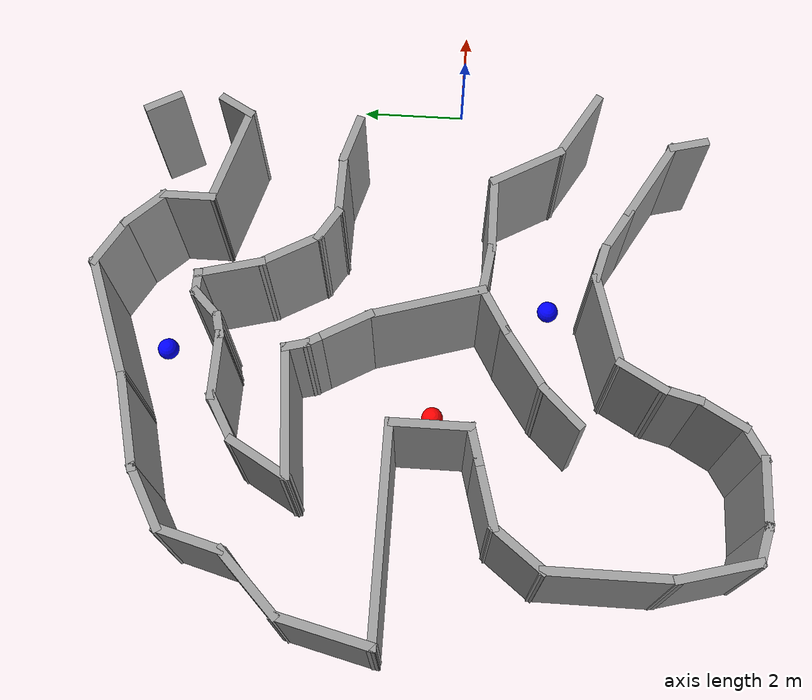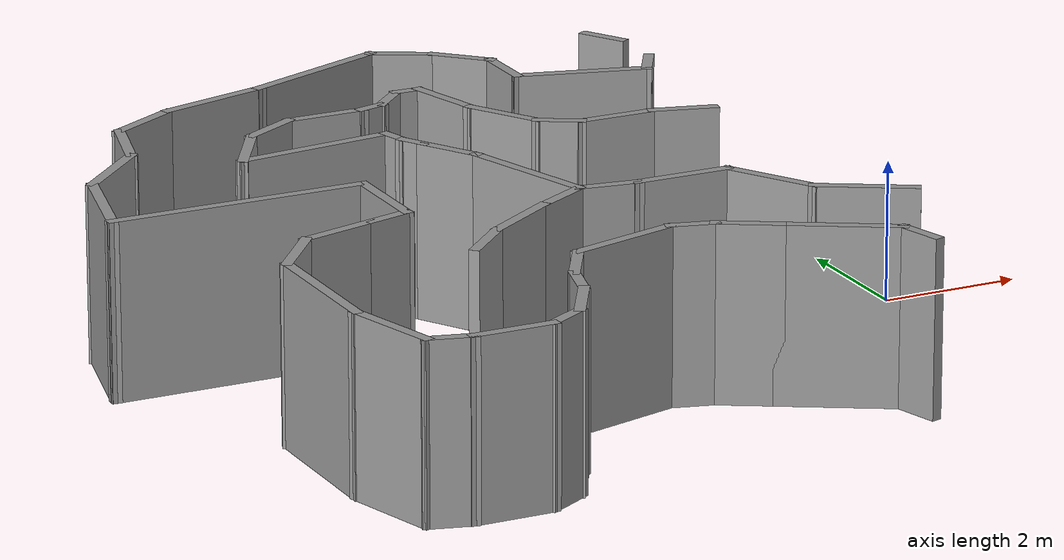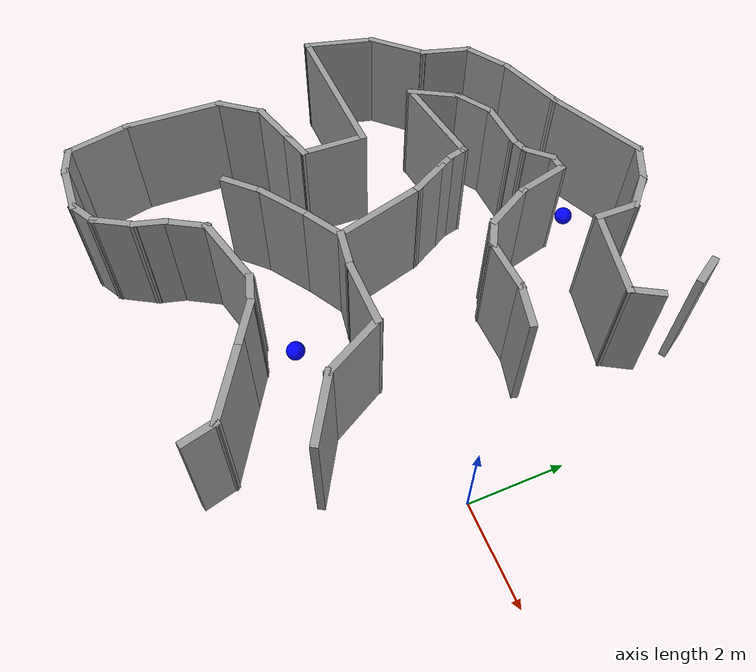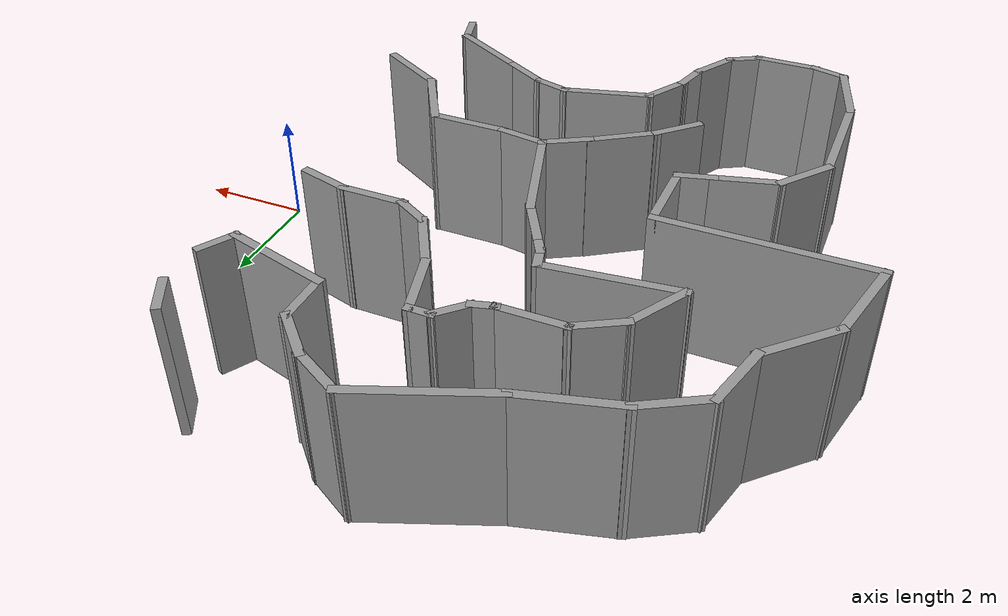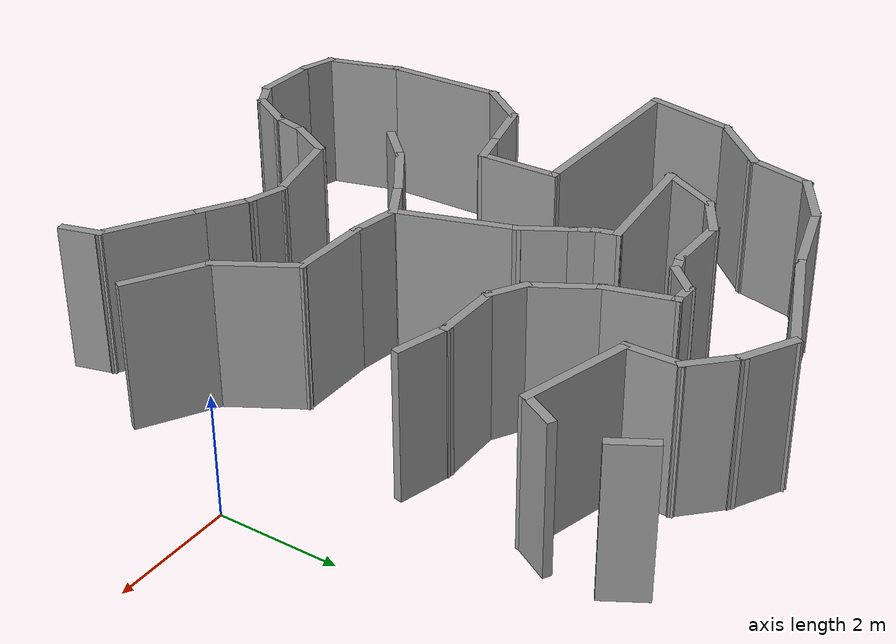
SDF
<sdf version="1.7">
 <model name="patrol_environment">
  <static>true</static>
  <pose>-2.57827 0.945924 0 0 -0 0</pose>
  <link name="Wall_1">
   <collision name="Wall_1_Collision">
    <geometry><box><size>2.25 0.15 2.5</size></box></geometry>
    <pose>0 0 1.25 0 -0 0</pose>
   </collision>
   <visual name="Wall_1_Visual">
    <pose>0 0 1.25 0 -0 0</pose>
    <geometry><box><size>2.25 0.15 2.5</size></box></geometry>
    <material>
     <script><uri>file://media/materials/scripts/gazebo.material</uri><name>Gazebo/Grey</name></script>
     <ambient>1 1 1 1</ambient>
    </material>
    <meta><layer>0</layer></meta>
   </visual>
   <pose>-7.15359 -3.67328 0 0 -0 -1.5708</pose>
  </link>
  <link name="Wall_10">
   <collision name="Wall_10_Collision">
    <geometry><box><size>0.75 0.15 2.5</size></box></geometry>
    <pose>0 0 1.25 0 -0 0</pose>
   </collision>
   <visual name="Wall_10_Visual">
    <pose>0 0 1.25 0 -0 0</pose>
    <geometry><box><size>0.75 0.15 2.5</size></box></geometry>
    <material>
     <script><uri>file://media/materials/scripts/gazebo.material</uri><name>Gazebo/Grey</name></script>
     <ambient>1 1 1 1</ambient>
    </material>
    <meta><layer>0</layer></meta>
   </visual>
   <pose>-1.76447 -3.49431 0 0 -0 -0.261799</pose>
  </link>
  <link name="Wall_108">
   <collision name="Wall_108_Collision">
    <geometry><box><size>1.5 0.15 2.5</size></box></geometry>
    <pose>0 0 1.25 0 -0 0</pose>
   </collision>
   <visual name="Wall_108_Visual">
    <pose>0 0 1.25 0 -0 0</pose>
    <geometry><box><size>1.5 0.15 2.5</size></box></geometry>
    <material>
     <script><uri>file://media/materials/scripts/gazebo.material</uri><name>Gazebo/Grey</name></script>
     <ambient>1 1 1 1</ambient>
    </material>
    <meta><layer>0</layer></meta>
   </visual>
   <pose>1.01327 -3.09083 0 0 -0 2.61799</pose>
  </link>
  <link name="Wall_109">
   <collision name="Wall_109_Collision">
    <geometry><box><size>1.5 0.15 2.5</size></box></geometry>
    <pose>0 0 1.25 0 -0 0</pose>
   </collision>
   <visual name="Wall_109_Visual">
    <pose>0 0 1.25 0 -0 0</pose>
    <geometry><box><size>1.5 0.15 2.5</size></box></geometry>
    <material>
     <script><uri>file://media/materials/scripts/gazebo.material</uri><name>Gazebo/Grey</name></script>
     <ambient>1 1 1 1</ambient>
    </material>
    <meta><layer>0</layer></meta>
   </visual>
   <pose>0.091205 -2.16876 0 0 -0 2.0944</pose>
  </link>
  <link name="Wall_11">
   <collision name="Wall_11_Collision">
    <geometry><box><size>1 0.15 2.5</size></box></geometry>
    <pose>0 0 1.25 0 -0 0</pose>
   </collision>
   <visual name="Wall_11_Visual">
    <pose>0 0 1.25 0 -0 0</pose>
    <geometry><box><size>1 0.15 2.5</size></box></geometry>
    <material>
     <script><uri>file://media/materials/scripts/gazebo.material</uri><name>Gazebo/Grey</name></script>
     <ambient>1 1 1 1</ambient>
    </material>
    <meta><layer>0</layer></meta>
   </visual>
   <pose>-1.10663 -3.78446 0 0 -0 -0.523599</pose>
  </link>
  <link name="Wall_110">
   <collision name="Wall_110_Collision">
    <geometry><box><size>1.5 0.15 2.5</size></box></geometry>
    <pose>0 0 1.25 0 -0 0</pose>
   </collision>
   <visual name="Wall_110_Visual">
    <pose>0 0 1.25 0 -0 0</pose>
    <geometry><box><size>1.5 0.15 2.5</size></box></geometry>
    <material>
     <script><uri>file://media/materials/scripts/gazebo.material</uri><name>Gazebo/Grey</name></script>
     <ambient>1 1 1 1</ambient>
    </material>
    <meta><layer>0</layer></meta>
   </visual>
   <pose>-0.921295 -1.58419 0 0 -0 3.14159</pose>
  </link>
  <link name="Wall_111">
   <collision name="Wall_111_Collision">
    <geometry><box><size>0.96902 0.15 2.5</size></box></geometry>
    <pose>0 0 1.25 0 -0 0</pose>
   </collision>
   <visual name="Wall_111_Visual">
    <pose>0 0 1.25 0 -0 0</pose>
    <geometry><box><size>0.96902 0.15 2.5</size></box></geometry>
    <material>
     <script><uri>file://media/materials/scripts/gazebo.material</uri><name>Gazebo/Grey</name></script>
     <ambient>1 1 1 1</ambient>
    </material>
    <meta><layer>0</layer></meta>
   </visual>
   <pose>-2.00146 -1.52468 0 0 -0 2.99575</pose>
  </link>
  <link name="Wall_112">
   <collision name="Wall_112_Collision">
    <geometry><box><size>1 0.15 2.5</size></box></geometry>
    <pose>0 0 1.25 0 -0 0</pose>
   </collision>
   <visual name="Wall_112_Visual">
    <pose>0 0 1.25 0 -0 0</pose>
    <geometry><box><size>1 0.15 2.5</size></box></geometry>
    <material>
     <script><uri>file://media/materials/scripts/gazebo.material</uri><name>Gazebo/Grey</name></script>
     <ambient>1 1 1 1</ambient>
    </material>
    <meta><layer>0</layer></meta>
   </visual>
   <pose>-2.76146 -1.67767 0 0 -0 -2.61799</pose>
  </link>
  <link name="Wall_113">
   <collision name="Wall_113_Collision">
    <geometry><box><size>1.34677 0.15 2.5</size></box></geometry>
    <pose>0 0 1.25 0 -0 0</pose>
   </collision>
   <visual name="Wall_113_Visual">
    <pose>0 0 1.25 0 -0 0</pose>
    <geometry><box><size>1.34677 0.15 2.5</size></box></geometry>
    <material>
     <script><uri>file://media/materials/scripts/gazebo.material</uri><name>Gazebo/Grey</name></script>
     <ambient>1 1 1 1</ambient>
    </material>
    <meta><layer>0</layer></meta>
   </visual>
   <pose>-3.63889 -2.22468 0 0 -0 -2.54838</pose>
  </link>
  <link name="Wall_114">
   <collision name="Wall_114_Collision">
    <geometry><box><size>1 0.15 2.5</size></box></geometry>
    <pose>0 0 1.25 0 -0 0</pose>
   </collision>
   <visual name="Wall_114_Visual">
    <pose>0 0 1.25 0 -0 0</pose>
    <geometry><box><size>1 0.15 2.5</size></box></geometry>
    <material>
     <script><uri>file://media/materials/scripts/gazebo.material</uri><name>Gazebo/Grey</name></script>
     <ambient>1 1 1 1</ambient>
    </material>
    <meta><layer>0</layer></meta>
   </visual>
   <pose>-4.43557 -2.85971 0 0 -0 -2.35619</pose>
  </link>
  <link name="Wall_116">
   <collision name="Wall_116_Collision">
    <geometry><box><size>2.1465 0.15 2.5</size></box></geometry>
    <pose>0 0 1.25 0 -0 0</pose>
   </collision>
   <visual name="Wall_116_Visual">
    <pose>0 0 1.25 0 -0 0</pose>
    <geometry><box><size>2.1465 0.15 2.5</size></box></geometry>
    <material>
     <script><uri>file://media/materials/scripts/gazebo.material</uri><name>Gazebo/Grey</name></script>
     <ambient>1 1 1 1</ambient>
    </material>
    <meta><layer>0</layer></meta>
   </visual>
   <pose>-2.69822 -0.510457 0 0 -0 1.86723</pose>
  </link>
  <link name="Wall_117">
   <collision name="Wall_117_Collision">
    <geometry><box><size>1 0.15 2.5</size></box></geometry>
    <pose>0 0 1.25 0 -0 0</pose>
   </collision>
   <visual name="Wall_117_Visual">
    <pose>0 0 1.25 0 -0 0</pose>
    <geometry><box><size>1 0.15 2.5</size></box></geometry>
    <material>
     <script><uri>file://media/materials/scripts/gazebo.material</uri><name>Gazebo/Grey</name></script>
     <ambient>1 1 1 1</ambient>
    </material>
    <meta><layer>0</layer></meta>
   </visual>
   <pose>-3.20232 0.812314 0 0 -0 2.0944</pose>
  </link>
  <link name="Wall_118">
   <collision name="Wall_118_Collision">
    <geometry><box><size>0.5 0.15 2.5</size></box></geometry>
    <pose>0 0 1.25 0 -0 0</pose>
   </collision>
   <visual name="Wall_118_Visual">
    <pose>0 0 1.25 0 -0 0</pose>
    <geometry><box><size>0.5 0.15 2.5</size></box></geometry>
    <material>
     <script><uri>file://media/materials/scripts/gazebo.material</uri><name>Gazebo/Grey</name></script>
     <ambient>1 1 1 1</ambient>
    </material>
    <meta><layer>0</layer></meta>
   </visual>
   <pose>-3.50231 1.33193 0 0 -0 2.0944</pose>
  </link>
  <link name="Wall_119">
   <collision name="Wall_119_Collision">
    <geometry><box><size>0.5 0.15 2.5</size></box></geometry>
    <pose>0 0 1.25 0 -0 0</pose>
   </collision>
   <visual name="Wall_119_Visual">
    <pose>0 0 1.25 0 -0 0</pose>
    <geometry><box><size>0.5 0.15 2.5</size></box></geometry>
    <material>
     <script><uri>file://media/materials/scripts/gazebo.material</uri><name>Gazebo/Grey</name></script>
     <ambient>1 1 1 1</ambient>
    </material>
    <meta><layer>0</layer></meta>
   </visual>
   <pose>-3.63511 1.65252 0 0 -0 1.8326</pose>
  </link>
  <link name="Wall_12">
   <collision name="Wall_12_Collision">
    <geometry><box><size>1.75 0.15 2.5</size></box></geometry>
    <pose>0 0 1.25 0 -0 0</pose>
   </collision>
   <visual name="Wall_12_Visual">
    <pose>0 0 1.25 0 -0 0</pose>
    <geometry><box><size>1.75 0.15 2.5</size></box></geometry>
    <material>
     <script><uri>file://media/materials/scripts/gazebo.material</uri><name>Gazebo/Grey</name></script>
     <ambient>1 1 1 1</ambient>
    </material>
    <meta><layer>0</layer></meta>
   </visual>
   <pose>-0.045746 -4.39696 0 0 -0 -0.523599</pose>
  </link>
  <link name="Wall_120">
   <collision name="Wall_120_Collision">
    <geometry><box><size>2.3895 0.15 2.5</size></box></geometry>
    <pose>0 0 1.25 0 -0 0</pose>
   </collision>
   <visual name="Wall_120_Visual">
    <pose>0 0 1.25 0 -0 0</pose>
    <geometry><box><size>2.3895 0.15 2.5</size></box></geometry>
    <material>
     <script><uri>file://media/materials/scripts/gazebo.material</uri><name>Gazebo/Grey</name></script>
     <ambient>1 1 1 1</ambient>
    </material>
    <meta><layer>0</layer></meta>
   </visual>
   <pose>-4.79376 1.70207 0 0 -0 -3.03468</pose>
  </link>
  <link name="Wall_13">
   <collision name="Wall_13_Collision">
    <geometry><box><size>0.75 0.15 2.5</size></box></geometry>
    <pose>0 0 1.25 0 -0 0</pose>
   </collision>
   <visual name="Wall_13_Visual">
    <pose>0 0 1.25 0 -0 0</pose>
    <geometry><box><size>0.75 0.15 2.5</size></box></geometry>
    <material>
     <script><uri>file://media/materials/scripts/gazebo.material</uri><name>Gazebo/Grey</name></script>
     <ambient>1 1 1 1</ambient>
    </material>
    <meta><layer>0</layer></meta>
   </visual>
   <pose>0.72472 -5.08673 0 0 -0 -1.309</pose>
  </link>
  <link name="Wall_2">
   <collision name="Wall_2_Collision">
    <geometry><box><size>1.5 0.15 2.5</size></box></geometry>
    <pose>0 0 1.25 0 -0 0</pose>
   </collision>
   <visual name="Wall_2_Visual">
    <pose>0 0 1.25 0 -0 0</pose>
    <geometry><box><size>1.5 0.15 2.5</size></box></geometry>
    <material>
     <script><uri>file://media/materials/scripts/gazebo.material</uri><name>Gazebo/Grey</name></script>
     <ambient>1 1 1 1</ambient>
    </material>
    <meta><layer>0</layer></meta>
   </visual>
   <pose>-6.97889 -5.37528 0 0 -0 -1.309</pose>
  </link>
  <link name="Wall_3">
   <collision name="Wall_3_Collision">
    <geometry><box><size>0.75 0.15 2.5</size></box></geometry>
    <pose>0 0 1.25 0 -0 0</pose>
   </collision>
   <visual name="Wall_3_Visual">
    <pose>0 0 1.25 0 -0 0</pose>
    <geometry><box><size>0.75 0.15 2.5</size></box></geometry>
    <material>
     <script><uri>file://media/materials/scripts/gazebo.material</uri><name>Gazebo/Grey</name></script>
     <ambient>1 1 1 1</ambient>
    </material>
    <meta><layer>0</layer></meta>
   </visual>
   <pose>-6.51441 -6.10493 0 0 -0 -0.261799</pose>
  </link>
  <link name="Wall_4">
   <collision name="Wall_4_Collision">
    <geometry><box><size>1.25 0.15 2.5</size></box></geometry>
    <pose>0 0 1.25 0 -0 0</pose>
   </collision>
   <visual name="Wall_4_Visual">
    <pose>0 0 1.25 0 -0 0</pose>
    <geometry><box><size>1.25 0.15 2.5</size></box></geometry>
    <material>
     <script><uri>file://media/materials/scripts/gazebo.material</uri><name>Gazebo/Grey</name></script>
     <ambient>1 1 1 1</ambient>
    </material>
    <meta><layer>0</layer></meta>
   </visual>
   <pose>-5.67463 -6.18257 0 0 -0 0</pose>
  </link>
  <link name="Wall_45">
   <collision name="Wall_45_Collision">
    <geometry><box><size>0.75 0.15 2.5</size></box></geometry>
    <pose>0 0 1.25 0 -0 0</pose>
   </collision>
   <visual name="Wall_45_Visual">
    <pose>0 0 1.25 0 -0 0</pose>
    <geometry><box><size>0.75 0.15 2.5</size></box></geometry>
    <material>
     <script><uri>file://media/materials/scripts/gazebo.material</uri><name>Gazebo/Grey</name></script>
     <ambient>1 1 1 1</ambient>
    </material>
    <meta><layer>0</layer></meta>
   </visual>
   <pose>1.02658 4.59495 0 0 -0 -1.0472</pose>
  </link>
  <link name="Wall_47">
   <collision name="Wall_47_Collision">
    <geometry><box><size>0.75 0.15 2.5</size></box></geometry>
    <pose>0 0 1.25 0 -0 0</pose>
   </collision>
   <visual name="Wall_47_Visual">
    <pose>0 0 1.25 0 -0 0</pose>
    <geometry><box><size>0.75 0.15 2.5</size></box></geometry>
    <material>
     <script><uri>file://media/materials/scripts/gazebo.material</uri><name>Gazebo/Grey</name></script>
     <ambient>1 1 1 1</ambient>
    </material>
    <meta><layer>0</layer></meta>
   </visual>
   <pose>1.02658 3.22533 0 0 -0 -2.0944</pose>
  </link>
  <link name="Wall_48">
   <collision name="Wall_48_Collision">
    <geometry><box><size>2 0.15 2.5</size></box></geometry>
    <pose>0 0 1.25 0 -0 0</pose>
   </collision>
   <visual name="Wall_48_Visual">
    <pose>0 0 1.25 0 -0 0</pose>
    <geometry><box><size>2 0.15 2.5</size></box></geometry>
    <material>
     <script><uri>file://media/materials/scripts/gazebo.material</uri><name>Gazebo/Grey</name></script>
     <ambient>1 1 1 1</ambient>
    </material>
    <meta><layer>0</layer></meta>
   </visual>
   <pose>-0.016905 3.20493 0 0 -0 2.87979</pose>
  </link>
  <link name="Wall_49">
   <collision name="Wall_49_Collision">
    <geometry><box><size>1 0.15 2.5</size></box></geometry>
    <pose>0 0 1.25 0 -0 0</pose>
   </collision>
   <visual name="Wall_49_Visual">
    <pose>0 0 1.25 0 -0 0</pose>
    <geometry><box><size>1 0.15 2.5</size></box></geometry>
    <material>
     <script><uri>file://media/materials/scripts/gazebo.material</uri><name>Gazebo/Grey</name></script>
     <ambient>1 1 1 1</ambient>
    </material>
    <meta><layer>0</layer></meta>
   </visual>
   <pose>-0.910387 3.86934 0 0 -0 1.5708</pose>
  </link>
  <link name="Wall_5">
   <collision name="Wall_5_Collision">
    <geometry><box><size>0.75 0.15 2.5</size></box></geometry>
    <pose>0 0 1.25 0 -0 0</pose>
   </collision>
   <visual name="Wall_5_Visual">
    <pose>0 0 1.25 0 -0 0</pose>
    <geometry><box><size>0.75 0.15 2.5</size></box></geometry>
    <material>
     <script><uri>file://media/materials/scripts/gazebo.material</uri><name>Gazebo/Grey</name></script>
     <ambient>1 1 1 1</ambient>
    </material>
    <meta><layer>0</layer></meta>
   </visual>
   <pose>-4.86482 -6.03257 0 0 -0 0.523599</pose>
  </link>
  <link name="Wall_50">
   <collision name="Wall_50_Collision">
    <geometry><box><size>1 0.15 2.5</size></box></geometry>
    <pose>0 0 1.25 0 -0 0</pose>
   </collision>
   <visual name="Wall_50_Visual">
    <pose>0 0 1.25 0 -0 0</pose>
    <geometry><box><size>1 0.15 2.5</size></box></geometry>
    <material>
     <script><uri>file://media/materials/scripts/gazebo.material</uri><name>Gazebo/Grey</name></script>
     <ambient>1 1 1 1</ambient>
    </material>
    <meta><layer>0</layer></meta>
   </visual>
   <pose>-1.21091 4.59486 0 0 -0 2.35619</pose>
  </link>
  <link name="Wall_51">
   <collision name="Wall_51_Collision">
    <geometry><box><size>1.04036 0.15 2.5</size></box></geometry>
    <pose>0 0 1.25 0 -0 0</pose>
   </collision>
   <visual name="Wall_51_Visual">
    <pose>0 0 1.25 0 -0 0</pose>
    <geometry><box><size>1.04036 0.15 2.5</size></box></geometry>
    <material>
     <script><uri>file://media/materials/scripts/gazebo.material</uri><name>Gazebo/Grey</name></script>
     <ambient>1 1 1 1</ambient>
    </material>
    <meta><layer>0</layer></meta>
   </visual>
   <pose>-1.90262 5.10788 0 0 -0 2.64398</pose>
  </link>
  <link name="Wall_54">
   <collision name="Wall_54_Collision">
    <geometry><box><size>1.75 0.15 2.5</size></box></geometry>
    <pose>0 0 1.25 0 -0 0</pose>
   </collision>
   <visual name="Wall_54_Visual">
    <pose>0 0 1.25 0 -0 0</pose>
    <geometry><box><size>1.75 0.15 2.5</size></box></geometry>
    <material>
     <script><uri>file://media/materials/scripts/gazebo.material</uri><name>Gazebo/Grey</name></script>
     <ambient>1 1 1 1</ambient>
    </material>
    <meta><layer>0</layer></meta>
   </visual>
   <pose>-5.15029 4.29229 0 0 -0 -2.87979</pose>
  </link>
  <link name="Wall_55">
   <collision name="Wall_55_Collision">
    <geometry><box><size>1.25 0.15 2.5</size></box></geometry>
    <pose>0 0 1.25 0 -0 0</pose>
   </collision>
   <visual name="Wall_55_Visual">
    <pose>0 0 1.25 0 -0 0</pose>
    <geometry><box><size>1.25 0.15 2.5</size></box></geometry>
    <material>
     <script><uri>file://media/materials/scripts/gazebo.material</uri><name>Gazebo/Grey</name></script>
     <ambient>1 1 1 1</ambient>
    </material>
    <meta><layer>0</layer></meta>
   </visual>
   <pose>-6.39935 3.81023 0 0 -0 -2.61799</pose>
  </link>
  <link name="Wall_56">
   <collision name="Wall_56_Collision">
    <geometry><box><size>1.25 0.15 2.5</size></box></geometry>
    <pose>0 0 1.25 0 -0 0</pose>
   </collision>
   <visual name="Wall_56_Visual">
    <pose>0 0 1.25 0 -0 0</pose>
    <geometry><box><size>1.25 0.15 2.5</size></box></geometry>
    <material>
     <script><uri>file://media/materials/scripts/gazebo.material</uri><name>Gazebo/Grey</name></script>
     <ambient>1 1 1 1</ambient>
    </material>
    <meta><layer>0</layer></meta>
   </visual>
   <pose>-7.01801 3.00398 0 0 -0 -1.8326</pose>
  </link>
  <link name="Wall_57">
   <collision name="Wall_57_Collision">
    <geometry><box><size>1.5 0.15 2.5</size></box></geometry>
    <pose>0 0 1.25 0 -0 0</pose>
   </collision>
   <visual name="Wall_57_Visual">
    <pose>0 0 1.25 0 -0 0</pose>
    <geometry><box><size>1.5 0.15 2.5</size></box></geometry>
    <material>
     <script><uri>file://media/materials/scripts/gazebo.material</uri><name>Gazebo/Grey</name></script>
     <ambient>1 1 1 1</ambient>
    </material>
    <meta><layer>0</layer></meta>
   </visual>
   <pose>-7.63766 1.99542 0 0 -0 -2.35619</pose>
  </link>
  <link name="Wall_58">
   <collision name="Wall_58_Collision">
    <geometry><box><size>1.73866 0.15 2.5</size></box></geometry>
    <pose>0 0 1.25 0 -0 0</pose>
   </collision>
   <visual name="Wall_58_Visual">
    <pose>0 0 1.25 0 -0 0</pose>
    <geometry><box><size>1.73866 0.15 2.5</size></box></geometry>
    <material>
     <script><uri>file://media/materials/scripts/gazebo.material</uri><name>Gazebo/Grey</name></script>
     <ambient>1 1 1 1</ambient>
    </material>
    <meta><layer>0</layer></meta>
   </visual>
   <pose>-8.29888 0.745381 0 0 -0 -1.80446</pose>
  </link>
  <link name="Wall_6">
   <collision name="Wall_6_Collision">
    <geometry><box><size>1 0.15 2.5</size></box></geometry>
    <pose>0 0 1.25 0 -0 0</pose>
   </collision>
   <visual name="Wall_6_Visual">
    <pose>0 0 1.25 0 -0 0</pose>
    <geometry><box><size>1 0.15 2.5</size></box></geometry>
    <material>
     <script><uri>file://media/materials/scripts/gazebo.material</uri><name>Gazebo/Grey</name></script>
     <ambient>1 1 1 1</ambient>
    </material>
    <meta><layer>0</layer></meta>
   </visual>
   <pose>-4.39252 -5.51451 0 0 -0 1.0472</pose>
  </link>
  <link name="Wall_63">
   <collision name="Wall_63_Collision">
    <geometry><box><size>3.75 0.15 2.5</size></box></geometry>
    <pose>0 0 1.25 0 -0 0</pose>
   </collision>
   <visual name="Wall_63_Visual">
    <pose>0 0 1.25 0 -0 0</pose>
    <geometry><box><size>3.75 0.15 2.5</size></box></geometry>
    <material>
     <script><uri>file://media/materials/scripts/gazebo.material</uri><name>Gazebo/Grey</name></script>
     <ambient>1 1 1 1</ambient>
    </material>
    <meta><layer>0</layer></meta>
   </visual>
   <pose>-6.68281 -0.02736 0 0 -0 0</pose>
  </link>
  <link name="Wall_64">
   <collision name="Wall_64_Collision">
    <geometry><box><size>1.5 0.15 2.5</size></box></geometry>
    <pose>0 0 1.25 0 -0 0</pose>
   </collision>
   <visual name="Wall_64_Visual">
    <pose>0 0 1.25 0 -0 0</pose>
    <geometry><box><size>1.5 0.15 2.5</size></box></geometry>
    <material>
     <script><uri>file://media/materials/scripts/gazebo.material</uri><name>Gazebo/Grey</name></script>
     <ambient>1 1 1 1</ambient>
    </material>
    <meta><layer>0</layer></meta>
   </visual>
   <pose>-4.88281 -0.70236 0 0 -0 -1.5708</pose>
  </link>
  <link name="Wall_65">
   <collision name="Wall_65_Collision">
    <geometry><box><size>0.75 0.15 2.5</size></box></geometry>
    <pose>0 0 1.25 0 -0 0</pose>
   </collision>
   <visual name="Wall_65_Visual">
    <pose>0 0 1.25 0 -0 0</pose>
    <geometry><box><size>0.75 0.15 2.5</size></box></geometry>
    <material>
     <script><uri>file://media/materials/scripts/gazebo.material</uri><name>Gazebo/Grey</name></script>
     <ambient>1 1 1 1</ambient>
    </material>
    <meta><layer>0</layer></meta>
   </visual>
   <pose>-5.17258 -1.45501 0 0 -0 -2.87979</pose>
  </link>
  <link name="Wall_66">
   <collision name="Wall_66_Collision">
    <geometry><box><size>1.25 0.15 2.5</size></box></geometry>
    <pose>0 0 1.25 0 -0 0</pose>
   </collision>
   <visual name="Wall_66_Visual">
    <pose>0 0 1.25 0 -0 0</pose>
    <geometry><box><size>1.25 0.15 2.5</size></box></geometry>
    <material>
     <script><uri>file://media/materials/scripts/gazebo.material</uri><name>Gazebo/Grey</name></script>
     <ambient>1 1 1 1</ambient>
    </material>
    <meta><layer>0</layer></meta>
   </visual>
   <pose>-5.99362 -1.675 0 0 -0 -2.87979</pose>
  </link>
  <link name="Wall_67">
   <collision name="Wall_67_Collision">
    <geometry><box><size>1.17216 0.15 2.5</size></box></geometry>
    <pose>0 0 1.25 0 -0 0</pose>
   </collision>
   <visual name="Wall_67_Visual">
    <pose>0 0 1.25 0 -0 0</pose>
    <geometry><box><size>1.17216 0.15 2.5</size></box></geometry>
    <material>
     <script><uri>file://media/materials/scripts/gazebo.material</uri><name>Gazebo/Grey</name></script>
     <ambient>1 1 1 1</ambient>
    </material>
    <meta><layer>0</layer></meta>
   </visual>
   <pose>-6.83924 -2.22032 0 0 -0 -2.23329</pose>
  </link>
  <link name="Wall_69">
   <collision name="Wall_69_Collision">
    <geometry><box><size>2.38966 0.15 2.5</size></box></geometry>
    <pose>0 0 1.25 0 -0 0</pose>
   </collision>
   <visual name="Wall_69_Visual">
    <pose>0 0 1.25 0 -0 0</pose>
    <geometry><box><size>2.38966 0.15 2.5</size></box></geometry>
    <material>
     <script><uri>file://media/materials/scripts/gazebo.material</uri><name>Gazebo/Grey</name></script>
     <ambient>1 1 1 1</ambient>
    </material>
    <meta><layer>0</layer></meta>
   </visual>
   <pose>-3.33568 4.90986 0 0 -0 0.375341</pose>
  </link>
  <link name="Wall_7">
   <collision name="Wall_7_Collision">
    <geometry><box><size>0.75 0.15 2.5</size></box></geometry>
    <pose>0 0 1.25 0 -0 0</pose>
   </collision>
   <visual name="Wall_7_Visual">
    <pose>0 0 1.25 0 -0 0</pose>
    <geometry><box><size>0.75 0.15 2.5</size></box></geometry>
    <material>
     <script><uri>file://media/materials/scripts/gazebo.material</uri><name>Gazebo/Grey</name></script>
     <ambient>1 1 1 1</ambient>
    </material>
    <meta><layer>0</layer></meta>
   </visual>
   <pose>-4.10237 -4.85667 0 0 -0 1.309</pose>
  </link>
  <link name="Wall_71">
   <collision name="Wall_71_Collision">
    <geometry><box><size>1.25 0.15 2.5</size></box></geometry>
    <pose>0 0 1.25 0 -0 0</pose>
   </collision>
   <visual name="Wall_71_Visual">
    <pose>0 0 1.25 0 -0 0</pose>
    <geometry><box><size>1.25 0.15 2.5</size></box></geometry>
    <material>
     <script><uri>file://media/materials/scripts/gazebo.material</uri><name>Gazebo/Grey</name></script>
     <ambient>1 1 1 1</ambient>
    </material>
    <meta><layer>0</layer></meta>
   </visual>
   <pose>-5.63212 2.05891 0 0 -0 1.0472</pose>
  </link>
  <link name="Wall_72">
   <collision name="Wall_72_Collision">
    <geometry><box><size>1 0.15 2.5</size></box></geometry>
    <pose>0 0 1.25 0 -0 0</pose>
   </collision>
   <visual name="Wall_72_Visual">
    <pose>0 0 1.25 0 -0 0</pose>
    <geometry><box><size>1 0.15 2.5</size></box></geometry>
    <material>
     <script><uri>file://media/materials/scripts/gazebo.material</uri><name>Gazebo/Grey</name></script>
     <ambient>1 1 1 1</ambient>
    </material>
    <meta><layer>0</layer></meta>
   </visual>
   <pose>-4.98906 2.74772 0 0 -0 0.523599</pose>
  </link>
  <link name="Wall_73">
   <collision name="Wall_73_Collision">
    <geometry><box><size>1.25 0.15 2.5</size></box></geometry>
    <pose>0 0 1.25 0 -0 0</pose>
   </collision>
   <visual name="Wall_73_Visual">
    <pose>0 0 1.25 0 -0 0</pose>
    <geometry><box><size>1.25 0.15 2.5</size></box></geometry>
    <material>
     <script><uri>file://media/materials/scripts/gazebo.material</uri><name>Gazebo/Grey</name></script>
     <ambient>1 1 1 1</ambient>
    </material>
    <meta><layer>0</layer></meta>
   </visual>
   <pose>-4.071 2.96022 0 0 -0 0</pose>
  </link>
  <link name="Wall_74">
   <collision name="Wall_74_Collision">
    <geometry><box><size>0.5 0.15 2.5</size></box></geometry>
    <pose>0 0 1.25 0 -0 0</pose>
   </collision>
   <visual name="Wall_74_Visual">
    <pose>0 0 1.25 0 -0 0</pose>
    <geometry><box><size>0.5 0.15 2.5</size></box></geometry>
    <material>
     <script><uri>file://media/materials/scripts/gazebo.material</uri><name>Gazebo/Grey</name></script>
     <ambient>1 1 1 1</ambient>
    </material>
    <meta><layer>0</layer></meta>
   </visual>
   <pose>-3.35196 3.00551 0 0 -0 0.261799</pose>
  </link>
  <link name="Wall_75">
   <collision name="Wall_75_Collision">
    <geometry><box><size>0.75 0.15 2.5</size></box></geometry>
    <pose>0 0 1.25 0 -0 0</pose>
   </collision>
   <visual name="Wall_75_Visual">
    <pose>0 0 1.25 0 -0 0</pose>
    <geometry><box><size>0.75 0.15 2.5</size></box></geometry>
    <material>
     <script><uri>file://media/materials/scripts/gazebo.material</uri><name>Gazebo/Grey</name></script>
     <ambient>1 1 1 1</ambient>
    </material>
    <meta><layer>0</layer></meta>
   </visual>
   <pose>-2.97079 3.26294 0 0 -0 0.785398</pose>
  </link>
  <link name="Wall_76">
   <collision name="Wall_76_Collision">
    <geometry><box><size>0.5 0.15 2.5</size></box></geometry>
    <pose>0 0 1.25 0 -0 0</pose>
   </collision>
   <visual name="Wall_76_Visual">
    <pose>0 0 1.25 0 -0 0</pose>
    <geometry><box><size>0.5 0.15 2.5</size></box></geometry>
    <material>
     <script><uri>file://media/materials/scripts/gazebo.material</uri><name>Gazebo/Grey</name></script>
     <ambient>1 1 1 1</ambient>
    </material>
    <meta><layer>0</layer></meta>
   </visual>
   <pose>-2.58366 3.47507 0 0 -0 0</pose>
  </link>
  <link name="Wall_77">
   <collision name="Wall_77_Collision">
    <geometry><box><size>1.25 0.15 2.5</size></box></geometry>
    <pose>0 0 1.25 0 -0 0</pose>
   </collision>
   <visual name="Wall_77_Visual">
    <pose>0 0 1.25 0 -0 0</pose>
    <geometry><box><size>1.25 0.15 2.5</size></box></geometry>
    <material>
     <script><uri>file://media/materials/scripts/gazebo.material</uri><name>Gazebo/Grey</name></script>
     <ambient>1 1 1 1</ambient>
    </material>
    <meta><layer>0</layer></meta>
   </visual>
   <pose>-2.26631 2.94381 0 0 -0 -1.309</pose>
  </link>
  <link name="Wall_78">
   <collision name="Wall_78_Collision">
    <geometry><box><size>1.25 0.15 2.5</size></box></geometry>
    <pose>0 0 1.25 0 -0 0</pose>
   </collision>
   <visual name="Wall_78_Visual">
    <pose>0 0 1.25 0 -0 0</pose>
    <geometry><box><size>1.25 0.15 2.5</size></box></geometry>
    <material>
     <script><uri>file://media/materials/scripts/gazebo.material</uri><name>Gazebo/Grey</name></script>
     <ambient>1 1 1 1</ambient>
    </material>
    <meta><layer>0</layer></meta>
   </visual>
   <pose>-1.84896 1.93624 0 0 -0 -1.0472</pose>
  </link>
  <link name="Wall_79">
   <collision name="Wall_79_Collision">
    <geometry><box><size>0.75 0.15 2.5</size></box></geometry>
    <pose>0 0 1.25 0 -0 0</pose>
   </collision>
   <visual name="Wall_79_Visual">
    <pose>0 0 1.25 0 -0 0</pose>
    <geometry><box><size>0.75 0.15 2.5</size></box></geometry>
    <material>
     <script><uri>file://media/materials/scripts/gazebo.material</uri><name>Gazebo/Grey</name></script>
     <ambient>1 1 1 1</ambient>
    </material>
    <meta><layer>0</layer></meta>
   </visual>
   <pose>-1.31415 1.30992 0 0 -0 -0.523599</pose>
  </link>
  <link name="Wall_8">
   <collision name="Wall_8_Collision">
    <geometry><box><size>1 0.15 2.5</size></box></geometry>
    <pose>0 0 1.25 0 -0 0</pose>
   </collision>
   <visual name="Wall_8_Visual">
    <pose>0 0 1.25 0 -0 0</pose>
    <geometry><box><size>1 0.15 2.5</size></box></geometry>
    <material>
     <script><uri>file://media/materials/scripts/gazebo.material</uri><name>Gazebo/Grey</name></script>
     <ambient>1 1 1 1</ambient>
    </material>
    <meta><layer>0</layer></meta>
   </visual>
   <pose>-3.81223 -4.19884 0 0 -0 1.0472</pose>
  </link>
  <link name="Wall_80">
   <collision name="Wall_80_Collision">
    <geometry><box><size>1.25 0.15 2.5</size></box></geometry>
    <pose>0 0 1.25 0 -0 0</pose>
   </collision>
   <visual name="Wall_80_Visual">
    <pose>0 0 1.25 0 -0 0</pose>
    <geometry><box><size>1.25 0.15 2.5</size></box></geometry>
    <material>
     <script><uri>file://media/materials/scripts/gazebo.material</uri><name>Gazebo/Grey</name></script>
     <ambient>1 1 1 1</ambient>
    </material>
    <meta><layer>0</layer></meta>
   </visual>
   <pose>-0.504344 1.15992 0 0 -0 0</pose>
  </link>
  <link name="Wall_81">
   <collision name="Wall_81_Collision">
    <geometry><box><size>1 0.15 2.5</size></box></geometry>
    <pose>0 0 1.25 0 -0 0</pose>
   </collision>
   <visual name="Wall_81_Visual">
    <pose>0 0 1.25 0 -0 0</pose>
    <geometry><box><size>1 0.15 2.5</size></box></geometry>
    <material>
     <script><uri>file://media/materials/scripts/gazebo.material</uri><name>Gazebo/Grey</name></script>
     <ambient>1 1 1 1</ambient>
    </material>
    <meta><layer>0</layer></meta>
   </visual>
   <pose>0.456175 1.04992 0 0 -0 -0.261799</pose>
  </link>
  <link name="Wall_9">
   <collision name="Wall_9_Collision">
    <geometry><box><size>1.75 0.15 2.5</size></box></geometry>
    <pose>0 0 1.25 0 -0 0</pose>
   </collision>
   <visual name="Wall_9_Visual">
    <pose>0 0 1.25 0 -0 0</pose>
    <geometry><box><size>1.75 0.15 2.5</size></box></geometry>
    <material>
     <script><uri>file://media/materials/scripts/gazebo.material</uri><name>Gazebo/Grey</name></script>
     <ambient>1 1 1 1</ambient>
    </material>
    <meta><layer>0</layer></meta>
   </visual>
   <pose>-2.82698 -3.62372 0 0 -0 0.261799</pose>
  </link>
  <model name="patrol_point_3">
   <static>true</static>
   <pose>-1.721714 -2.812131 0.1 0 0 0</pose>
   <link name="patrol_point_3_link">
    <visual name="patrol_point_3_visual">
     <geometry><sphere><radius>0.2</radius></sphere></geometry>
     <material><ambient>0 0 1 1</ambient><diffuse>0 0 1 1</diffuse><emissive>0 0 0.3 1</emissive></material>
    </visual>
   </link>
  </model>
  <model name="patrol_point_4">
   <static>true</static>
   <pose>-4.006013 -0.716855 0.1 0 0 0</pose>
   <link name="patrol_point_4_link">
    <visual name="patrol_point_4_visual">
     <geometry><sphere><radius>0.2</radius></sphere></geometry>
     <material><ambient>1 0 0 1</ambient><diffuse>1 0 0 1</diffuse><emissive>0.3 0 0 1</emissive></material>
    </visual>
   </link>
  </model>
  <model name="patrol_point_5">
   <static>true</static>
   <pose>-2.958408 4.375596 0.1 0 0 0</pose>
   <link name="patrol_point_5_link">
    <visual name="patrol_point_5_visual">
     <geometry><sphere><radius>0.2</radius></sphere></geometry>
     <material><ambient>0 0 1 1</ambient><diffuse>0 0 1 1</diffuse><emissive>0 0 0.3 1</emissive></material>
    </visual>
   </link>
  </model>
 </model>
</sdf>
